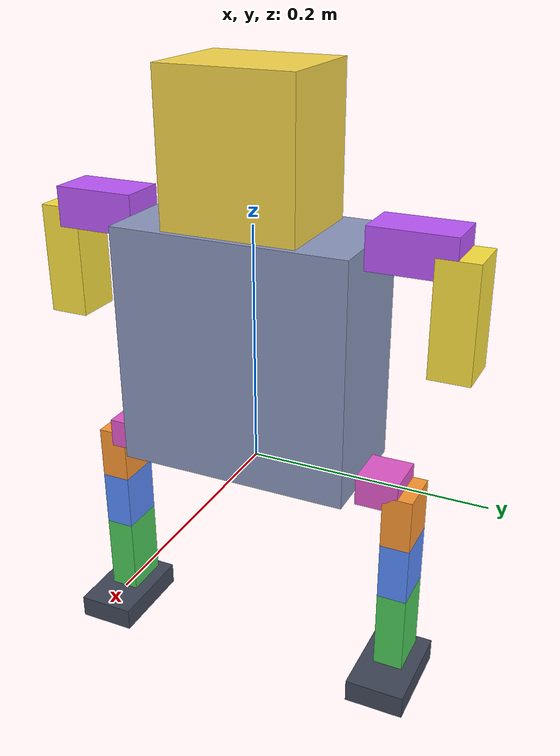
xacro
<robot xmlns:xacro="http://www.ros.org/wiki/xacro" name="pikachu_sample_14dof_links">

  <!-- 【集中参数区】改这里即可整体调整 / 适配骨骼模型              -->

  <!-- ==== 躯干 / 肩 ==== -->

    <!-- 骨盆半宽：躯干中轴线 → 髋 pitch 关节的横向(y)距离，左右腿共用 -->

    <!-- 肩高：髋 pitch 平面 → 臂 pitch 关节的 z 抬升（也是躯干盒高度） -->

    <!-- 躯干盒 x(前后) 厚度 -->
  <!-- 躯干盒 y(左右) 宽度已绑定 pelvis_half_width*2：随骨盆联动，
       避免调整髋半宽时躯干不跟着加宽、两侧腿像架空一样 -->

  <!-- ==== 腿：骨盆横向/侧段（左右方向，一般不调） ==== -->

    <!-- hip_pitch→hip_roll 关节沿 y 偏移 -->

    <!-- hip_roll→hip_yaw 关节沿 -z 偏移（骨盆下沿） -->

  <!-- ==== 【腿纵向骨长】适配骨骼时重点调这两项 ==== -->

    <!-- 大腿：hip_yaw→knee 关节 沿 -z 偏移（也是该段 box 的长度） -->

    <!-- 小腿：knee→ankle 关节 沿 -z 偏移（也是该段 box 的长度） -->

  <!-- ==== 腿截面尺寸 ==== -->

    <!-- 腿 box 的 x(前后) 厚 -->

    <!-- 腿 box 的 y(内外) 厚 -->

  <!-- ==== 臂（fixed，不会动，只做占位） ==== -->

    <!-- 臂 pitch→roll 沿 y 偏移 -->

    <!-- 臂 roll 段：沿 -z 偏移 / 长度（14dof 版为末端，已去掉 yaw/elbow） -->

  <!-- ==== 头（原始 URDF 没有，适配骨骼时按需调整） ==== -->

    <!-- 头 x(前后) 尺寸 -->

    <!-- 头 y(左右) 尺寸 -->

    <!-- 头 z(上下) 尺寸 -->

    <!-- 头底部 相对躯干顶(z=shoulder_height) 的额外抬升，>=0 -->

  <!-- ==== 手臂 / 头 关节限位（把 fixed 改成 revolute 后可驱动） ==== -->

    <!-- 臂 pitch/roll 的关节下限（弧度） -->

    <!-- 臂 pitch/roll 的关节上限（弧度） -->

    <!-- 头关节下限（弧度） -->

    <!-- 头关节上限（弧度） -->

  <!-- ==== 材质（仅便于视觉区分；相邻关节用不同色，左右对称） ==== -->

    <!-- 躯干：淡蓝灰 -->

    <!-- 头：亮黄 -->

    <!-- 腿段A(hip_pitch)：品红 -->

    <!-- 腿段B(hip_roll)：橙 -->

    <!-- 腿段C(hip_yaw 大腿)：蓝 -->

    <!-- 腿段D(knee 小腿)：绿 -->

    <!-- 腿段E(ankle 脚)：深灰蓝 -->

    <!-- 臂段A(arm_pitch 肩)：紫 -->

    <!-- 臂段B(arm_roll 上臂，14dof 末端)：黄 -->

  <!-- 材质定义（每段独立颜色，左右对称共用同一套）              -->
  <material name="torso_blue">
    <color rgba="0.55 0.60 0.75 1"/>
  </material>
  <material name="head_yellow">
    <color rgba="0.98 0.85 0.30 1"/>
  </material>
  <material name="leg_hip_pitch">
    <color rgba="0.90 0.35 0.80 1"/>
  </material>
  <material name="leg_hip_roll">
    <color rgba="1.00 0.60 0.20 1"/>
  </material>
  <material name="leg_hip_yaw">
    <color rgba="0.35 0.55 1.00 1"/>
  </material>
  <material name="leg_knee">
    <color rgba="0.30 0.80 0.35 1"/>
  </material>
  <material name="leg_ankle">
    <color rgba="0.25 0.28 0.35 1"/>
  </material>
  <material name="arm_pitch">
    <color rgba="0.75 0.35 1.00 1"/>
  </material>
  <material name="arm_roll">
    <color rgba="1.00 0.90 0.25 1"/>
  </material>

  <!-- 腿部宏：生成 pitch/roll/yaw/knee/ankle 五个 link             -->
  <!--   side: left | right     sn:  1 | -1（y 方向符号）      -->

  <!-- 手臂宏：只生成 pitch → roll 两个 link（14dof，全部 revolute 可动） -->

  <!-- base_link：躯干（含 4 个与躯干相连的 base 关节）           -->
  <link name="base_link">
    <visual>
      <origin xyz="0 0 0.1" rpy="0 0 0"/>
      <geometry>
        <box size="0.1 0.1948 0.2"/>
      </geometry>
      <material name="torso_blue"/>
    </visual>
  <inertial><origin xyz="0.000000000 0.000000000 0.100000000" rpy="0.000000000 0.000000000 0.000000000"/><mass value="5.84400"/><inertia ixx="0.037960" iyy="0.024350" izz="0.023350" ixy="0" ixz="0" iyz="0"/></inertial></link>

  <!-- 头部：base_link → head_link（固定，立在躯干顶上） -->
  <joint name="head_joint" type="revolute">
    <origin xyz="0 0 0.26" rpy="0 0 0"/>
    <parent link="base_link"/>
    <child link="head_link"/>
    <!-- 默认绕 y 轴＝点头；若想左右转头，把 axis 改成 "0 0 1" -->
    <axis xyz="0 1 0"/>
    <limit lower="-0.8" upper="0.8" effort="2.0" velocity="2"/>
  </joint>
  <link name="head_link">
    <visual>
      <origin xyz="0 0 0" rpy="0 0 0"/>
      <geometry>
        <box size="0.09 0.11 0.12"/>
      </geometry>
      <material name="head_yellow"/>
    </visual>
  <inertial><origin xyz="0.000000000 0.000000000 0.000000000" rpy="0.000000000 0.000000000 0.000000000"/><mass value="1.78200"/><inertia ixx="0.003935" iyy="0.003341" izz="0.003000" ixy="0" ixz="0" iyz="0"/></inertial></link>

  <!-- 髋 pitch：型→left_hip_pitch_link / right_hip_pitch_link -->
  <joint name="left_hip_pitch_joint" type="revolute">
    <origin xyz="0 0.0974 0" rpy="0 0 0"/>
    <parent link="base_link"/>
    <child link="left_hip_pitch_link"/>
    <axis xyz="0 -1 0"/>
    <limit lower="0" upper="2.44" effort="12.5" velocity="2"/>
  </joint>
  <joint name="right_hip_pitch_joint" type="revolute">
    <origin xyz="0 -0.0974 0" rpy="0 0 0"/>
    <parent link="base_link"/>
    <child link="right_hip_pitch_link"/>
    <axis xyz="0 -1 0"/>
    <limit lower="0" upper="2.44" effort="12.5" velocity="2"/>
  </joint>

  <!-- 臂 pitch：型→left/right_arm_pitch_link（固定，抬升 shoulder_height） -->
  <joint name="left_arm_pitch_joint" type="revolute">
    <origin xyz="0 0.0974 0.2" rpy="0 0 0"/>
    <parent link="base_link"/>
    <child link="left_arm_pitch_link"/>
    <axis xyz="0 -1 0"/>
    <limit lower="-1.57" upper="1.57" effort="2.0" velocity="2"/>
  </joint>
  <joint name="right_arm_pitch_joint" type="revolute">
    <origin xyz="0 -0.0974 0.2" rpy="0 0 0"/>
    <parent link="base_link"/>
    <child link="right_arm_pitch_link"/>
    <axis xyz="0 -1 0"/>
    <limit lower="-1.57" upper="1.57" effort="2.0" velocity="2"/>
  </joint>

  <!-- 组装：左腿 / 右腿 / 左臂 / 右臂                           -->

    <!-- hip_pitch_link：覆盖到 roll 的横向(y)段 -->
    <link name="left_hip_pitch_link">
      <visual>
        <origin xyz="0 0.01775 0" rpy="0 0 0"/>
        <geometry>
          <box size="0.04 0.0355 0.025"/>
        </geometry>
        <material name="leg_hip_pitch"/>
      </visual>
    <inertial><origin xyz="0.000000000 0.017750000 0.000000000" rpy="0.000000000 0.000000000 0.000000000"/><mass value="0.05325"/><inertia ixx="0.000008" iyy="0.000010" izz="0.000013" ixy="0" ixz="0" iyz="0"/></inertial></link>

    <joint name="left_hip_roll_joint" type="revolute">
      <origin xyz="0 0.0355 0" rpy="0 0 0"/>
      <parent link="left_hip_pitch_link"/>
      <child link="left_hip_roll_link"/>
      <axis xyz="1 0 0"/>
      <limit lower="-0.09" upper="0.26" effort="9.0" velocity="1"/>
    </joint>

    <!-- hip_roll_link：覆盖到 yaw 的 -z 骨盆段 -->
    <link name="left_hip_roll_link">
      <visual>
        <origin xyz="0 0 -0.023" rpy="0 0 0"/>
        <geometry>
          <box size="0.04 0.025 0.046"/>
        </geometry>
        <material name="leg_hip_roll"/>
      </visual>
    <inertial><origin xyz="0.000000000 0.000000000 -0.023000000" rpy="0.000000000 0.000000000 0.000000000"/><mass value="0.06900"/><inertia ixx="0.000016" iyy="0.000021" izz="0.000013" ixy="0" ixz="0" iyz="0"/></inertial></link>

    <joint name="left_hip_yaw_joint" type="revolute">
      <origin xyz="0 0 -0.046" rpy="0 0 0"/>
      <parent link="left_hip_roll_link"/>
      <child link="left_hip_yaw_link"/>
      <axis xyz="0 0 1"/>
      <limit lower="-0.09" upper="0.26" effort="9.0" velocity="1"/>
    </joint>

    <!-- hip_yaw_link：大腿段（thigh_length） -->
    <link name="left_hip_yaw_link">
      <visual>
        <origin xyz="0 0 -0.02505" rpy="0 0 0"/>
        <geometry>
          <box size="0.04 0.025 0.0501"/>
        </geometry>
        <material name="leg_hip_yaw"/>
      </visual>
    <inertial><origin xyz="0.000000000 0.000000000 -0.025050000" rpy="0.000000000 0.000000000 0.000000000"/><mass value="0.07515"/><inertia ixx="0.000020" iyy="0.000026" izz="0.000014" ixy="0" ixz="0" iyz="0"/></inertial></link>

    <joint name="left_knee_joint" type="revolute">
      <origin xyz="0 0 -0.0501" rpy="0 0 0"/>
      <parent link="left_hip_yaw_link"/>
      <child link="left_knee_link"/>
      <axis xyz="0 1 0"/>
      <limit lower="0" upper="1.57" effort="12.5" velocity="3"/>
    </joint>

    <!-- knee_link：小腿段（shank_length） -->
    <link name="left_knee_link">
      <visual>
        <origin xyz="0 0 -0.035" rpy="0 0 0"/>
        <geometry>
          <box size="0.04 0.025 0.07"/>
        </geometry>
        <material name="leg_knee"/>
      </visual>
    <inertial><origin xyz="0.000000000 0.000000000 -0.035000000" rpy="0.000000000 0.000000000 0.000000000"/><mass value="0.10500"/><inertia ixx="0.000048" iyy="0.000057" izz="0.000019" ixy="0" ixz="0" iyz="0"/></inertial></link>

    <joint name="left_ankle_joint" type="revolute">
      <origin xyz="0 0 -0.07" rpy="0 0 0"/>
      <parent link="left_knee_link"/>
      <child link="left_ankle_link"/>
      <axis xyz="0 -1 0"/>
      <limit lower="-0.52" upper="1.05" effort="9.0" velocity="2"/>
    </joint>

    <!-- ankle_link：脚掌（末端） -->
    <link name="left_ankle_link">
      <visual>
        <origin xyz="0.013333333333333334 0 -0.01" rpy="0 0 0"/>
        <geometry>
          <box size="0.08 0.05 0.02"/>
        </geometry>
        <material name="leg_ankle"/>
      </visual>
    <inertial><origin xyz="0.013333333 0.000000000 -0.010000000" rpy="0.000000000 0.000000000 0.000000000"/><mass value="0.12000"/><inertia ixx="0.000029" iyy="0.000068" izz="0.000089" ixy="0" ixz="0" iyz="0"/></inertial></link>

    <!-- hip_pitch_link：覆盖到 roll 的横向(y)段 -->
    <link name="right_hip_pitch_link">
      <visual>
        <origin xyz="0 -0.01775 0" rpy="0 0 0"/>
        <geometry>
          <box size="0.04 0.0355 0.025"/>
        </geometry>
        <material name="leg_hip_pitch"/>
      </visual>
    <inertial><origin xyz="0.000000000 -0.017750000 0.000000000" rpy="0.000000000 0.000000000 0.000000000"/><mass value="0.05325"/><inertia ixx="0.000008" iyy="0.000010" izz="0.000013" ixy="0" ixz="0" iyz="0"/></inertial></link>

    <joint name="right_hip_roll_joint" type="revolute">
      <origin xyz="0 -0.0355 0" rpy="0 0 0"/>
      <parent link="right_hip_pitch_link"/>
      <child link="right_hip_roll_link"/>
      <axis xyz="-1 0 0"/>
      <limit lower="-0.09" upper="0.26" effort="9.0" velocity="1"/>
    </joint>

    <!-- hip_roll_link：覆盖到 yaw 的 -z 骨盆段 -->
    <link name="right_hip_roll_link">
      <visual>
        <origin xyz="0 0 -0.023" rpy="0 0 0"/>
        <geometry>
          <box size="0.04 0.025 0.046"/>
        </geometry>
        <material name="leg_hip_roll"/>
      </visual>
    <inertial><origin xyz="0.000000000 0.000000000 -0.023000000" rpy="0.000000000 0.000000000 0.000000000"/><mass value="0.06900"/><inertia ixx="0.000016" iyy="0.000021" izz="0.000013" ixy="0" ixz="0" iyz="0"/></inertial></link>

    <joint name="right_hip_yaw_joint" type="revolute">
      <origin xyz="0 0 -0.046" rpy="0 0 0"/>
      <parent link="right_hip_roll_link"/>
      <child link="right_hip_yaw_link"/>
      <axis xyz="0 0 -1"/>
      <limit lower="-0.09" upper="0.26" effort="9.0" velocity="1"/>
    </joint>

    <!-- hip_yaw_link：大腿段（thigh_length） -->
    <link name="right_hip_yaw_link">
      <visual>
        <origin xyz="0 0 -0.02505" rpy="0 0 0"/>
        <geometry>
          <box size="0.04 0.025 0.0501"/>
        </geometry>
        <material name="leg_hip_yaw"/>
      </visual>
    <inertial><origin xyz="0.000000000 0.000000000 -0.025050000" rpy="0.000000000 0.000000000 0.000000000"/><mass value="0.07515"/><inertia ixx="0.000020" iyy="0.000026" izz="0.000014" ixy="0" ixz="0" iyz="0"/></inertial></link>

    <joint name="right_knee_joint" type="revolute">
      <origin xyz="0 0 -0.0501" rpy="0 0 0"/>
      <parent link="right_hip_yaw_link"/>
      <child link="right_knee_link"/>
      <axis xyz="0 1 0"/>
      <limit lower="0" upper="1.57" effort="12.5" velocity="3"/>
    </joint>

    <!-- knee_link：小腿段（shank_length） -->
    <link name="right_knee_link">
      <visual>
        <origin xyz="0 0 -0.035" rpy="0 0 0"/>
        <geometry>
          <box size="0.04 0.025 0.07"/>
        </geometry>
        <material name="leg_knee"/>
      </visual>
    <inertial><origin xyz="0.000000000 0.000000000 -0.035000000" rpy="0.000000000 0.000000000 0.000000000"/><mass value="0.10500"/><inertia ixx="0.000048" iyy="0.000057" izz="0.000019" ixy="0" ixz="0" iyz="0"/></inertial></link>

    <joint name="right_ankle_joint" type="revolute">
      <origin xyz="0 0 -0.07" rpy="0 0 0"/>
      <parent link="right_knee_link"/>
      <child link="right_ankle_link"/>
      <axis xyz="0 -1 0"/>
      <limit lower="-0.52" upper="1.05" effort="9.0" velocity="2"/>
    </joint>

    <!-- ankle_link：脚掌（末端） -->
    <link name="right_ankle_link">
      <visual>
        <origin xyz="0.013333333333333334 0 -0.01" rpy="0 0 0"/>
        <geometry>
          <box size="0.08 0.05 0.02"/>
        </geometry>
        <material name="leg_ankle"/>
      </visual>
    <inertial><origin xyz="0.013333333 0.000000000 -0.010000000" rpy="0.000000000 0.000000000 0.000000000"/><mass value="0.12000"/><inertia ixx="0.000029" iyy="0.000068" izz="0.000089" ixy="0" ixz="0" iyz="0"/></inertial></link>

    <!-- arm_pitch_link：覆盖到 roll 的横向(y)段 -->
    <link name="left_arm_pitch_link">
      <visual>
        <origin xyz="0 0.0341 0" rpy="0 0 0"/>
        <geometry>
          <box size="0.0399 0.0682 0.0333"/>
        </geometry>
        <material name="arm_pitch"/>
      </visual>
    <inertial><origin xyz="0.000000000 0.034100000 0.000000000" rpy="0.000000000 0.000000000 0.000000000"/><mass value="0.13592"/><inertia ixx="0.000065" iyy="0.000031" izz="0.000071" ixy="0" ixz="0" iyz="0"/></inertial></link>

    <joint name="left_arm_roll_joint" type="revolute">
      <origin xyz="0 0.0682 0" rpy="0 0 0"/>
      <parent link="left_arm_pitch_link"/>
      <child link="left_arm_roll_link"/>
      <axis xyz="1 0 0"/>
      <limit lower="-1.57" upper="1.57" effort="2.0" velocity="2"/>
    </joint>

    <!-- arm_roll_link：下臂/末端段（arm_upper_z）——14dof 版已去掉 yaw/elbow -->
    <link name="left_arm_roll_link">
      <visual>
        <origin xyz="0 0 -0.0459" rpy="0 0 0"/>
        <geometry>
          <box size="0.0399 0.0333 0.0918"/>
        </geometry>
        <material name="arm_roll"/>
      </visual>
    <inertial><origin xyz="0.000000000 0.000000000 -0.045900000" rpy="0.000000000 0.000000000 0.000000000"/><mass value="0.18296"/><inertia ixx="0.000145" iyy="0.000153" izz="0.000041" ixy="0" ixz="0" iyz="0"/></inertial></link>

    <!-- arm_pitch_link：覆盖到 roll 的横向(y)段 -->
    <link name="right_arm_pitch_link">
      <visual>
        <origin xyz="0 -0.0341 0" rpy="0 0 0"/>
        <geometry>
          <box size="0.0399 0.0682 0.0333"/>
        </geometry>
        <material name="arm_pitch"/>
      </visual>
    <inertial><origin xyz="0.000000000 -0.034100000 0.000000000" rpy="0.000000000 0.000000000 0.000000000"/><mass value="0.13592"/><inertia ixx="0.000065" iyy="0.000031" izz="0.000071" ixy="0" ixz="0" iyz="0"/></inertial></link>

    <joint name="right_arm_roll_joint" type="revolute">
      <origin xyz="0 -0.0682 0" rpy="0 0 0"/>
      <parent link="right_arm_pitch_link"/>
      <child link="right_arm_roll_link"/>
      <axis xyz="-1 0 0"/>
      <limit lower="-1.57" upper="1.57" effort="2.0" velocity="2"/>
    </joint>

    <!-- arm_roll_link：下臂/末端段（arm_upper_z）——14dof 版已去掉 yaw/elbow -->
    <link name="right_arm_roll_link">
      <visual>
        <origin xyz="0 0 -0.0459" rpy="0 0 0"/>
        <geometry>
          <box size="0.0399 0.0333 0.0918"/>
        </geometry>
        <material name="arm_roll"/>
      </visual>
    <inertial><origin xyz="0.000000000 0.000000000 -0.045900000" rpy="0.000000000 0.000000000 0.000000000"/><mass value="0.18296"/><inertia ixx="0.000145" iyy="0.000153" izz="0.000041" ixy="0" ixz="0" iyz="0"/></inertial></link>

</robot>
